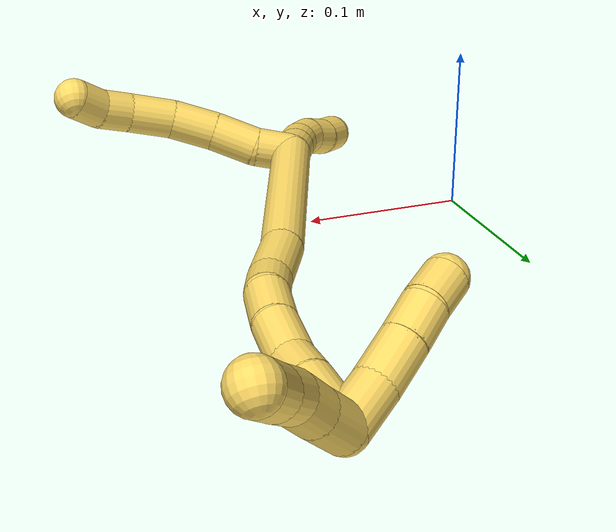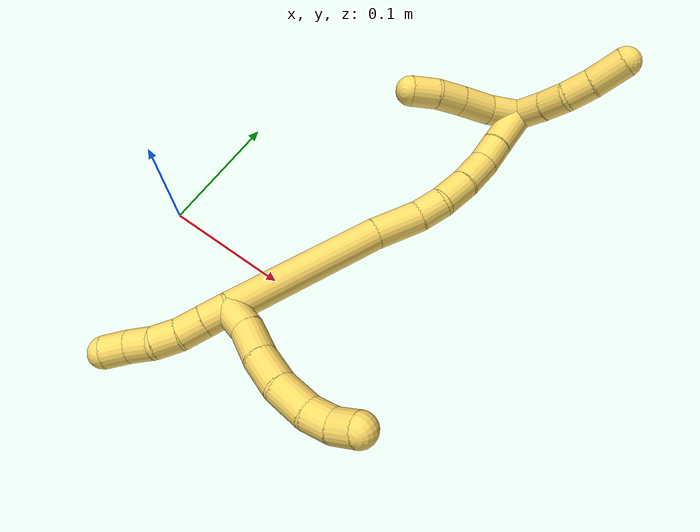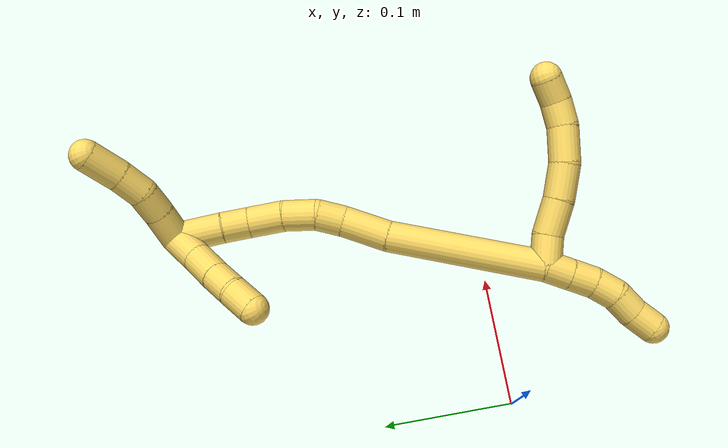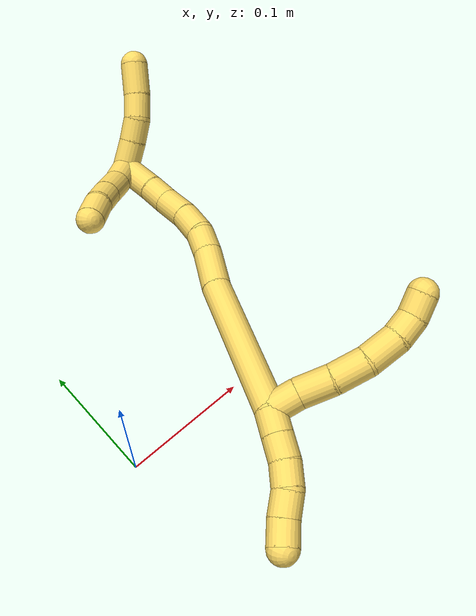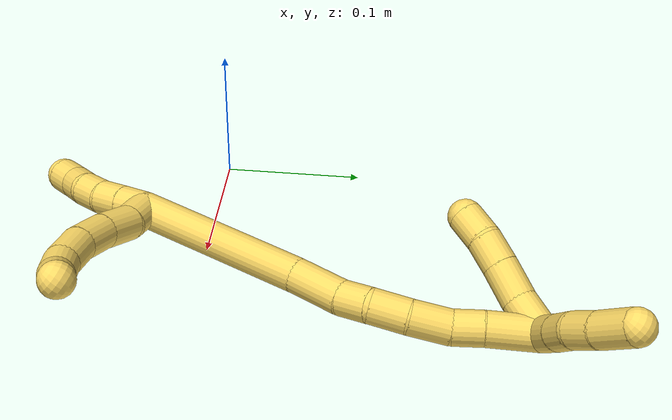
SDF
<sdf version="1.7">
 <world name="default">
  <model name="5">
   <static>0</static>
   <link name="5">
    <collision name="collision-cylinder-e_1_2_8">
     <pose>0.004878 0.010454 0.003561 -1.24252 0.415942 -0.299839</pose>
     <geometry><cylinder><radius>0.0125</radius><length>0.024147</length></cylinder></geometry>
     <surface>
      <friction><ode><mu>1.16</mu><mu2>1.16</mu2><slip1>0</slip1><slip2>0</slip2></ode></friction>
      <contact><ode><kp>1e+06</kp><kd>1</kd><max_vel>0</max_vel><min_depth>0.001</min_depth></ode></contact>
     </surface>
    </collision>
    <visual name="visual-cylinder-e_1_2_8">
     <pose>0.004878 0.010454 0.003561 -1.24252 0.415942 -0.299839</pose>
     <geometry><cylinder><radius>0.0125</radius><length>0.024147</length></cylinder></geometry>
     <material><ambient>1 0.858824 0.4 1</ambient></material>
    </visual>
    <collision name="collision-cylinder-e_2_8_9">
     <pose>0.015107 0.031897 0.014594 -0.97356 0.382792 -0.204392</pose>
     <geometry><cylinder><radius>0.0125</radius><length>0.02865</length></cylinder></geometry>
     <surface>
      <friction><ode><mu>1.16</mu><mu2>1.16</mu2><slip1>0</slip1><slip2>0</slip2></ode></friction>
      <contact><ode><kp>1e+06</kp><kd>1</kd><max_vel>0</max_vel><min_depth>0.001</min_depth></ode></contact>
     </surface>
    </collision>
    <visual name="visual-cylinder-e_2_8_9">
     <pose>0.015107 0.031897 0.014594 -0.97356 0.382792 -0.204392</pose>
     <geometry><cylinder><radius>0.0125</radius><length>0.02865</length></cylinder></geometry>
     <material><ambient>1 0.858824 0.4 1</ambient></material>
    </visual>
    <collision name="collision-cylinder-e_3_9_10">
     <pose>0.025554 0.054806 0.027838 -1.11993 0.367276 -0.231826</pose>
     <geometry><cylinder><radius>0.0125</radius><length>0.028382</length></cylinder></geometry>
     <surface>
      <friction><ode><mu>1.16</mu><mu2>1.16</mu2><slip1>0</slip1><slip2>0</slip2></ode></friction>
      <contact><ode><kp>1e+06</kp><kd>1</kd><max_vel>0</max_vel><min_depth>0.001</min_depth></ode></contact>
     </surface>
    </collision>
    <visual name="visual-cylinder-e_3_9_10">
     <pose>0.025554 0.054806 0.027838 -1.11993 0.367276 -0.231826</pose>
     <geometry><cylinder><radius>0.0125</radius><length>0.028382</length></cylinder></geometry>
     <material><ambient>1 0.858824 0.4 1</ambient></material>
    </visual>
    <collision name="collision-cylinder-e_4_10_11">
     <pose>0.035275 0.079966 0.036595 -1.34901 0.32853 -0.263548</pose>
     <geometry><cylinder><radius>0.0125</radius><length>0.028676</length></cylinder></geometry>
     <surface>
      <friction><ode><mu>1.16</mu><mu2>1.16</mu2><slip1>0</slip1><slip2>0</slip2></ode></friction>
      <contact><ode><kp>1e+06</kp><kd>1</kd><max_vel>0</max_vel><min_depth>0.001</min_depth></ode></contact>
     </surface>
    </collision>
    <visual name="visual-cylinder-e_4_10_11">
     <pose>0.035275 0.079966 0.036595 -1.34901 0.32853 -0.263548</pose>
     <geometry><cylinder><radius>0.0125</radius><length>0.028676</length></cylinder></geometry>
     <material><ambient>1 0.858824 0.4 1</ambient></material>
    </visual>
    <collision name="collision-cylinder-e_5_11_12">
     <pose>0.041483 0.103131 0.04015 -1.51348 0.157692 -0.148936</pose>
     <geometry><cylinder><radius>0.0125</radius><length>0.020136</length></cylinder></geometry>
     <surface>
      <friction><ode><mu>1.16</mu><mu2>1.16</mu2><slip1>0</slip1><slip2>0</slip2></ode></friction>
      <contact><ode><kp>1e+06</kp><kd>1</kd><max_vel>0</max_vel><min_depth>0.001</min_depth></ode></contact>
     </surface>
    </collision>
    <visual name="visual-cylinder-e_5_11_12">
     <pose>0.041483 0.103131 0.04015 -1.51348 0.157692 -0.148936</pose>
     <geometry><cylinder><radius>0.0125</radius><length>0.020136</length></cylinder></geometry>
     <material><ambient>1 0.858824 0.4 1</ambient></material>
    </visual>
    <collision name="collision-cylinder-e_6_12_6">
     <pose>0.041208 0.122863 0.041434 -1.49808 -0.186557 0.17353</pose>
     <geometry><cylinder><radius>0.0125</radius><length>0.020009</length></cylinder></geometry>
     <surface>
      <friction><ode><mu>1.16</mu><mu2>1.16</mu2><slip1>0</slip1><slip2>0</slip2></ode></friction>
      <contact><ode><kp>1e+06</kp><kd>1</kd><max_vel>0</max_vel><min_depth>0.001</min_depth></ode></contact>
     </surface>
    </collision>
    <visual name="visual-cylinder-e_6_12_6">
     <pose>0.041208 0.122863 0.041434 -1.49808 -0.186557 0.17353</pose>
     <geometry><cylinder><radius>0.0125</radius><length>0.020009</length></cylinder></geometry>
     <material><ambient>1 0.858824 0.4 1</ambient></material>
    </visual>
    <collision name="collision-cylinder-e_1_2_13">
     <pose>0.004085 -0.006805 0.006083 0.84139 0.420763 0.190501</pose>
     <geometry><cylinder><radius>0.0125</radius><length>0.02</length></cylinder></geometry>
     <surface>
      <friction><ode><mu>1.16</mu><mu2>1.16</mu2><slip1>0</slip1><slip2>0</slip2></ode></friction>
      <contact><ode><kp>1e+06</kp><kd>1</kd><max_vel>0</max_vel><min_depth>0.001</min_depth></ode></contact>
     </surface>
    </collision>
    <visual name="visual-cylinder-e_1_2_13">
     <pose>0.004085 -0.006805 0.006083 0.84139 0.420763 0.190501</pose>
     <geometry><cylinder><radius>0.0125</radius><length>0.02</length></cylinder></geometry>
     <material><ambient>1 0.858824 0.4 1</ambient></material>
    </visual>
    <collision name="collision-cylinder-e_2_13_14">
     <pose>0.012347 -0.020399 0.018205 0.843765 0.431061 0.195898</pose>
     <geometry><cylinder><radius>0.0125</radius><length>0.02</length></cylinder></geometry>
     <surface>
      <friction><ode><mu>1.16</mu><mu2>1.16</mu2><slip1>0</slip1><slip2>0</slip2></ode></friction>
      <contact><ode><kp>1e+06</kp><kd>1</kd><max_vel>0</max_vel><min_depth>0.001</min_depth></ode></contact>
     </surface>
    </collision>
    <visual name="visual-cylinder-e_2_13_14">
     <pose>0.012347 -0.020399 0.018205 0.843765 0.431061 0.195898</pose>
     <geometry><cylinder><radius>0.0125</radius><length>0.02</length></cylinder></geometry>
     <material><ambient>1 0.858824 0.4 1</ambient></material>
    </visual>
    <collision name="collision-cylinder-e_3_14_15">
     <pose>0.019444 -0.035135 0.029564 0.980876 0.29614 0.158954</pose>
     <geometry><cylinder><radius>0.0125</radius><length>0.02</length></cylinder></geometry>
     <surface>
      <friction><ode><mu>1.16</mu><mu2>1.16</mu2><slip1>0</slip1><slip2>0</slip2></ode></friction>
      <contact><ode><kp>1e+06</kp><kd>1</kd><max_vel>0</max_vel><min_depth>0.001</min_depth></ode></contact>
     </surface>
    </collision>
    <visual name="visual-cylinder-e_3_14_15">
     <pose>0.019444 -0.035135 0.029564 0.980876 0.29614 0.158954</pose>
     <geometry><cylinder><radius>0.0125</radius><length>0.02</length></cylinder></geometry>
     <material><ambient>1 0.858824 0.4 1</ambient></material>
    </visual>
    <collision name="collision-cylinder-e_4_15_16">
     <pose>0.024576 -0.052429 0.03767 1.28118 0.223169 0.166671</pose>
     <geometry><cylinder><radius>0.0125</radius><length>0.02</length></cylinder></geometry>
     <surface>
      <friction><ode><mu>1.16</mu><mu2>1.16</mu2><slip1>0</slip1><slip2>0</slip2></ode></friction>
      <contact><ode><kp>1e+06</kp><kd>1</kd><max_vel>0</max_vel><min_depth>0.001</min_depth></ode></contact>
     </surface>
    </collision>
    <visual name="visual-cylinder-e_4_15_16">
     <pose>0.024576 -0.052429 0.03767 1.28118 0.223169 0.166671</pose>
     <geometry><cylinder><radius>0.0125</radius><length>0.02</length></cylinder></geometry>
     <material><ambient>1 0.858824 0.4 1</ambient></material>
    </visual>
    <collision name="collision-cylinder-e_5_16_5">
     <pose>0.02906 -0.07042 0.044938 1.09241 0.229133 0.139674</pose>
     <geometry><cylinder><radius>0.0125</radius><length>0.02</length></cylinder></geometry>
     <surface>
      <friction><ode><mu>1.16</mu><mu2>1.16</mu2><slip1>0</slip1><slip2>0</slip2></ode></friction>
      <contact><ode><kp>1e+06</kp><kd>1</kd><max_vel>0</max_vel><min_depth>0.001</min_depth></ode></contact>
     </surface>
    </collision>
    <visual name="visual-cylinder-e_5_16_5">
     <pose>0.02906 -0.07042 0.044938 1.09241 0.229133 0.139674</pose>
     <geometry><cylinder><radius>0.0125</radius><length>0.02</length></cylinder></geometry>
     <material><ambient>1 0.858824 0.4 1</ambient></material>
    </visual>
    <collision name="collision-cylinder-e_1_2_17">
     <pose>-0.018715 0.033789 -0.049151 -2.53934 -0.304044 0.916537</pose>
     <geometry><cylinder><radius>0.0125</radius><length>0.125025</length></cylinder></geometry>
     <surface>
      <friction><ode><mu>1.16</mu><mu2>1.16</mu2><slip1>0</slip1><slip2>0</slip2></ode></friction>
      <contact><ode><kp>1e+06</kp><kd>1</kd><max_vel>0</max_vel><min_depth>0.001</min_depth></ode></contact>
     </surface>
    </collision>
    <visual name="visual-cylinder-e_1_2_17">
     <pose>-0.018715 0.033789 -0.049151 -2.53934 -0.304044 0.916537</pose>
     <geometry><cylinder><radius>0.0125</radius><length>0.125025</length></cylinder></geometry>
     <material><ambient>1 0.858824 0.4 1</ambient></material>
    </visual>
    <collision name="collision-cylinder-e_2_17_18">
     <pose>-0.042566 0.079985 -0.111731 -2.39576 -0.273858 0.677276</pose>
     <geometry><cylinder><radius>0.0125</radius><length>0.037982</length></cylinder></geometry>
     <surface>
      <friction><ode><mu>1.16</mu><mu2>1.16</mu2><slip1>0</slip1><slip2>0</slip2></ode></friction>
      <contact><ode><kp>1e+06</kp><kd>1</kd><max_vel>0</max_vel><min_depth>0.001</min_depth></ode></contact>
     </surface>
    </collision>
    <visual name="visual-cylinder-e_2_17_18">
     <pose>-0.042566 0.079985 -0.111731 -2.39576 -0.273858 0.677276</pose>
     <geometry><cylinder><radius>0.0125</radius><length>0.037982</length></cylinder></geometry>
     <material><ambient>1 0.858824 0.4 1</ambient></material>
    </visual>
    <collision name="collision-cylinder-e_3_18_19">
     <pose>-0.052405 0.099058 -0.132443 -2.4003 -0.444581 1.05361</pose>
     <geometry><cylinder><radius>0.0125</radius><length>0.021872</length></cylinder></geometry>
     <surface>
      <friction><ode><mu>1.16</mu><mu2>1.16</mu2><slip1>0</slip1><slip2>0</slip2></ode></friction>
      <contact><ode><kp>1e+06</kp><kd>1</kd><max_vel>0</max_vel><min_depth>0.001</min_depth></ode></contact>
     </surface>
    </collision>
    <visual name="visual-cylinder-e_3_18_19">
     <pose>-0.052405 0.099058 -0.132443 -2.4003 -0.444581 1.05361</pose>
     <geometry><cylinder><radius>0.0125</radius><length>0.021872</length></cylinder></geometry>
     <material><ambient>1 0.858824 0.4 1</ambient></material>
    </visual>
    <collision name="collision-cylinder-e_4_19_20">
     <pose>-0.062356 0.110427 -0.150891 -2.74302 -0.408743 1.5967</pose>
     <geometry><cylinder><radius>0.0125</radius><length>0.026405</length></cylinder></geometry>
     <surface>
      <friction><ode><mu>1.16</mu><mu2>1.16</mu2><slip1>0</slip1><slip2>0</slip2></ode></friction>
      <contact><ode><kp>1e+06</kp><kd>1</kd><max_vel>0</max_vel><min_depth>0.001</min_depth></ode></contact>
     </surface>
    </collision>
    <visual name="visual-cylinder-e_4_19_20">
     <pose>-0.062356 0.110427 -0.150891 -2.74302 -0.408743 1.5967</pose>
     <geometry><cylinder><radius>0.0125</radius><length>0.026405</length></cylinder></geometry>
     <material><ambient>1 0.858824 0.4 1</ambient></material>
    </visual>
    <collision name="collision-cylinder-e_5_20_21">
     <pose>-0.07352 0.118115 -0.174868 -2.91257 -0.42265 2.15735</pose>
     <geometry><cylinder><radius>0.0125</radius><length>0.02885</length></cylinder></geometry>
     <surface>
      <friction><ode><mu>1.16</mu><mu2>1.16</mu2><slip1>0</slip1><slip2>0</slip2></ode></friction>
      <contact><ode><kp>1e+06</kp><kd>1</kd><max_vel>0</max_vel><min_depth>0.001</min_depth></ode></contact>
     </surface>
    </collision>
    <visual name="visual-cylinder-e_5_20_21">
     <pose>-0.07352 0.118115 -0.174868 -2.91257 -0.42265 2.15735</pose>
     <geometry><cylinder><radius>0.0125</radius><length>0.02885</length></cylinder></geometry>
     <material><ambient>1 0.858824 0.4 1</ambient></material>
    </visual>
    <collision name="collision-cylinder-e_6_21_22">
     <pose>-0.086015 0.123559 -0.196074 -2.85683 -0.64484 2.33093</pose>
     <geometry><cylinder><radius>0.0125</radius><length>0.021888</length></cylinder></geometry>
     <surface>
      <friction><ode><mu>1.16</mu><mu2>1.16</mu2><slip1>0</slip1><slip2>0</slip2></ode></friction>
      <contact><ode><kp>1e+06</kp><kd>1</kd><max_vel>0</max_vel><min_depth>0.001</min_depth></ode></contact>
     </surface>
    </collision>
    <visual name="visual-cylinder-e_6_21_22">
     <pose>-0.086015 0.123559 -0.196074 -2.85683 -0.64484 2.33093</pose>
     <geometry><cylinder><radius>0.0125</radius><length>0.021888</length></cylinder></geometry>
     <material><ambient>1 0.858824 0.4 1</ambient></material>
    </visual>
    <collision name="collision-cylinder-e_7_22_1">
     <pose>-0.102956 0.129694 -0.219951 -2.90837 -0.577204 2.38998</pose>
     <geometry><cylinder><radius>0.0125</radius><length>0.037979</length></cylinder></geometry>
     <surface>
      <friction><ode><mu>1.16</mu><mu2>1.16</mu2><slip1>0</slip1><slip2>0</slip2></ode></friction>
      <contact><ode><kp>1e+06</kp><kd>1</kd><max_vel>0</max_vel><min_depth>0.001</min_depth></ode></contact>
     </surface>
    </collision>
    <visual name="visual-cylinder-e_7_22_1">
     <pose>-0.102956 0.129694 -0.219951 -2.90837 -0.577204 2.38998</pose>
     <geometry><cylinder><radius>0.0125</radius><length>0.037979</length></cylinder></geometry>
     <material><ambient>1 0.858824 0.4 1</ambient></material>
    </visual>
    <collision name="collision-cylinder-e_1_1_23">
     <pose>-0.116318 0.123162 -0.22648 0.850869 -0.217469 -0.098846</pose>
     <geometry><cylinder><radius>0.0125</radius><length>0.027812</length></cylinder></geometry>
     <surface>
      <friction><ode><mu>1.16</mu><mu2>1.16</mu2><slip1>0</slip1><slip2>0</slip2></ode></friction>
      <contact><ode><kp>1e+06</kp><kd>1</kd><max_vel>0</max_vel><min_depth>0.001</min_depth></ode></contact>
     </surface>
    </collision>
    <visual name="visual-cylinder-e_1_1_23">
     <pose>-0.116318 0.123162 -0.22648 0.850869 -0.217469 -0.098846</pose>
     <geometry><cylinder><radius>0.0125</radius><length>0.027812</length></cylinder></geometry>
     <material><ambient>1 0.858824 0.4 1</ambient></material>
    </visual>
    <collision name="collision-cylinder-e_2_23_24">
     <pose>-0.124026 0.104107 -0.207987 0.747675 -0.347166 -0.137356</pose>
     <geometry><cylinder><radius>0.0125</radius><length>0.027672</length></cylinder></geometry>
     <surface>
      <friction><ode><mu>1.16</mu><mu2>1.16</mu2><slip1>0</slip1><slip2>0</slip2></ode></friction>
      <contact><ode><kp>1e+06</kp><kd>1</kd><max_vel>0</max_vel><min_depth>0.001</min_depth></ode></contact>
     </surface>
    </collision>
    <visual name="visual-cylinder-e_2_23_24">
     <pose>-0.124026 0.104107 -0.207987 0.747675 -0.347166 -0.137356</pose>
     <geometry><cylinder><radius>0.0125</radius><length>0.027672</length></cylinder></geometry>
     <material><ambient>1 0.858824 0.4 1</ambient></material>
    </visual>
    <collision name="collision-cylinder-e_3_24_25">
     <pose>-0.13212 0.088237 -0.190571 0.728228 -0.310501 -0.119153</pose>
     <geometry><cylinder><radius>0.0125</radius><length>0.022165</length></cylinder></geometry>
     <surface>
      <friction><ode><mu>1.16</mu><mu2>1.16</mu2><slip1>0</slip1><slip2>0</slip2></ode></friction>
      <contact><ode><kp>1e+06</kp><kd>1</kd><max_vel>0</max_vel><min_depth>0.001</min_depth></ode></contact>
     </surface>
    </collision>
    <visual name="visual-cylinder-e_3_24_25">
     <pose>-0.13212 0.088237 -0.190571 0.728228 -0.310501 -0.119153</pose>
     <geometry><cylinder><radius>0.0125</radius><length>0.022165</length></cylinder></geometry>
     <material><ambient>1 0.858824 0.4 1</ambient></material>
    </visual>
    <collision name="collision-cylinder-e_4_25_4">
     <pose>-0.137203 0.072792 -0.175548 0.86706 -0.152481 -0.070691</pose>
     <geometry><cylinder><radius>0.0125</radius><length>0.022351</length></cylinder></geometry>
     <surface>
      <friction><ode><mu>1.16</mu><mu2>1.16</mu2><slip1>0</slip1><slip2>0</slip2></ode></friction>
      <contact><ode><kp>1e+06</kp><kd>1</kd><max_vel>0</max_vel><min_depth>0.001</min_depth></ode></contact>
     </surface>
    </collision>
    <visual name="visual-cylinder-e_4_25_4">
     <pose>-0.137203 0.072792 -0.175548 0.86706 -0.152481 -0.070691</pose>
     <geometry><cylinder><radius>0.0125</radius><length>0.022351</length></cylinder></geometry>
     <material><ambient>1 0.858824 0.4 1</ambient></material>
    </visual>
    <collision name="collision-cylinder-e_1_1_26">
     <pose>-0.118263 0.145491 -0.233476 -1.41072 -0.382934 0.327159</pose>
     <geometry><cylinder><radius>0.0125</radius><length>0.026471</length></cylinder></geometry>
     <surface>
      <friction><ode><mu>1.16</mu><mu2>1.16</mu2><slip1>0</slip1><slip2>0</slip2></ode></friction>
      <contact><ode><kp>1e+06</kp><kd>1</kd><max_vel>0</max_vel><min_depth>0.001</min_depth></ode></contact>
     </surface>
    </collision>
    <visual name="visual-cylinder-e_1_1_26">
     <pose>-0.118263 0.145491 -0.233476 -1.41072 -0.382934 0.327159</pose>
     <geometry><cylinder><radius>0.0125</radius><length>0.026471</length></cylinder></geometry>
     <material><ambient>1 0.858824 0.4 1</ambient></material>
    </visual>
    <collision name="collision-cylinder-e_2_26_27">
     <pose>-0.12779 0.167182 -0.230139 -1.42757 -0.442459 0.384784</pose>
     <geometry><cylinder><radius>0.0125</radius><length>0.021401</length></cylinder></geometry>
     <surface>
      <friction><ode><mu>1.16</mu><mu2>1.16</mu2><slip1>0</slip1><slip2>0</slip2></ode></friction>
      <contact><ode><kp>1e+06</kp><kd>1</kd><max_vel>0</max_vel><min_depth>0.001</min_depth></ode></contact>
     </surface>
    </collision>
    <visual name="visual-cylinder-e_2_26_27">
     <pose>-0.12779 0.167182 -0.230139 -1.42757 -0.442459 0.384784</pose>
     <geometry><cylinder><radius>0.0125</radius><length>0.021401</length></cylinder></geometry>
     <material><ambient>1 0.858824 0.4 1</ambient></material>
    </visual>
    <collision name="collision-cylinder-e_3_27_28">
     <pose>-0.138037 0.186315 -0.23038 -1.73875 -0.528654 0.620155</pose>
     <geometry><cylinder><radius>0.0125</radius><length>0.022463</length></cylinder></geometry>
     <surface>
      <friction><ode><mu>1.16</mu><mu2>1.16</mu2><slip1>0</slip1><slip2>0</slip2></ode></friction>
      <contact><ode><kp>1e+06</kp><kd>1</kd><max_vel>0</max_vel><min_depth>0.001</min_depth></ode></contact>
     </surface>
    </collision>
    <visual name="visual-cylinder-e_3_27_28">
     <pose>-0.138037 0.186315 -0.23038 -1.73875 -0.528654 0.620155</pose>
     <geometry><cylinder><radius>0.0125</radius><length>0.022463</length></cylinder></geometry>
     <material><ambient>1 0.858824 0.4 1</ambient></material>
    </visual>
    <collision name="collision-cylinder-e_4_28_3">
     <pose>-0.15229 0.207691 -0.234582 -1.78591 -0.617543 0.754436</pose>
     <geometry><cylinder><radius>0.0125</radius><length>0.029665</length></cylinder></geometry>
     <surface>
      <friction><ode><mu>1.16</mu><mu2>1.16</mu2><slip1>0</slip1><slip2>0</slip2></ode></friction>
      <contact><ode><kp>1e+06</kp><kd>1</kd><max_vel>0</max_vel><min_depth>0.001</min_depth></ode></contact>
     </surface>
    </collision>
    <visual name="visual-cylinder-e_4_28_3">
     <pose>-0.15229 0.207691 -0.234582 -1.78591 -0.617543 0.754436</pose>
     <geometry><cylinder><radius>0.0125</radius><length>0.029665</length></cylinder></geometry>
     <material><ambient>1 0.858824 0.4 1</ambient></material>
    </visual>
    <collision name="collision-sphere-3">
     <pose>-0.160878 0.219505 -0.237164 0 -0 0</pose>
     <geometry><sphere><radius>0.0125</radius></sphere></geometry>
     <surface>
      <friction><ode><mu>1.16</mu><mu2>1.16</mu2><slip1>0</slip1><slip2>0</slip2></ode></friction>
      <contact><ode><kp>1e+06</kp><kd>1</kd><max_vel>0</max_vel><min_depth>0.001</min_depth></ode></contact>
     </surface>
    </collision>
    <visual name="visual-sphere-3">
     <pose>-0.160878 0.219505 -0.237164 0 -0 0</pose>
     <geometry><sphere><radius>0.0125</radius></sphere></geometry>
     <material><ambient>1 0.858824 0.4 1</ambient></material>
    </visual>
    <collision name="collision-sphere-28">
     <pose>-0.143701 0.195877 -0.232001 0 -0 0</pose>
     <geometry><sphere><radius>0.0125</radius></sphere></geometry>
     <surface>
      <friction><ode><mu>1.16</mu><mu2>1.16</mu2><slip1>0</slip1><slip2>0</slip2></ode></friction>
      <contact><ode><kp>1e+06</kp><kd>1</kd><max_vel>0</max_vel><min_depth>0.001</min_depth></ode></contact>
     </surface>
    </collision>
    <visual name="visual-sphere-28">
     <pose>-0.143701 0.195877 -0.232001 0 -0 0</pose>
     <geometry><sphere><radius>0.0125</radius></sphere></geometry>
     <material><ambient>1 0.858824 0.4 1</ambient></material>
    </visual>
    <collision name="collision-sphere-27">
     <pose>-0.132372 0.176753 -0.228759 0 -0 0</pose>
     <geometry><sphere><radius>0.0125</radius></sphere></geometry>
     <surface>
      <friction><ode><mu>1.16</mu><mu2>1.16</mu2><slip1>0</slip1><slip2>0</slip2></ode></friction>
      <contact><ode><kp>1e+06</kp><kd>1</kd><max_vel>0</max_vel><min_depth>0.001</min_depth></ode></contact>
     </surface>
    </collision>
    <visual name="visual-sphere-27">
     <pose>-0.132372 0.176753 -0.228759 0 -0 0</pose>
     <geometry><sphere><radius>0.0125</radius></sphere></geometry>
     <material><ambient>1 0.858824 0.4 1</ambient></material>
    </visual>
    <collision name="collision-sphere-26">
     <pose>-0.123209 0.157611 -0.231519 0 -0 0</pose>
     <geometry><sphere><radius>0.0125</radius></sphere></geometry>
     <surface>
      <friction><ode><mu>1.16</mu><mu2>1.16</mu2><slip1>0</slip1><slip2>0</slip2></ode></friction>
      <contact><ode><kp>1e+06</kp><kd>1</kd><max_vel>0</max_vel><min_depth>0.001</min_depth></ode></contact>
     </surface>
    </collision>
    <visual name="visual-sphere-26">
     <pose>-0.123209 0.157611 -0.231519 0 -0 0</pose>
     <geometry><sphere><radius>0.0125</radius></sphere></geometry>
     <material><ambient>1 0.858824 0.4 1</ambient></material>
    </visual>
    <collision name="collision-sphere-4">
     <pose>-0.138901 0.064371 -0.1684 0 -0 0</pose>
     <geometry><sphere><radius>0.0125</radius></sphere></geometry>
     <surface>
      <friction><ode><mu>1.16</mu><mu2>1.16</mu2><slip1>0</slip1><slip2>0</slip2></ode></friction>
      <contact><ode><kp>1e+06</kp><kd>1</kd><max_vel>0</max_vel><min_depth>0.001</min_depth></ode></contact>
     </surface>
    </collision>
    <visual name="visual-sphere-4">
     <pose>-0.138901 0.064371 -0.1684 0 -0 0</pose>
     <geometry><sphere><radius>0.0125</radius></sphere></geometry>
     <material><ambient>1 0.858824 0.4 1</ambient></material>
    </visual>
    <collision name="collision-sphere-25">
     <pose>-0.135506 0.081214 -0.182695 0 -0 0</pose>
     <geometry><sphere><radius>0.0125</radius></sphere></geometry>
     <surface>
      <friction><ode><mu>1.16</mu><mu2>1.16</mu2><slip1>0</slip1><slip2>0</slip2></ode></friction>
      <contact><ode><kp>1e+06</kp><kd>1</kd><max_vel>0</max_vel><min_depth>0.001</min_depth></ode></contact>
     </surface>
    </collision>
    <visual name="visual-sphere-25">
     <pose>-0.135506 0.081214 -0.182695 0 -0 0</pose>
     <geometry><sphere><radius>0.0125</radius></sphere></geometry>
     <material><ambient>1 0.858824 0.4 1</ambient></material>
    </visual>
    <collision name="collision-sphere-24">
     <pose>-0.128733 0.09526 -0.198447 0 -0 0</pose>
     <geometry><sphere><radius>0.0125</radius></sphere></geometry>
     <surface>
      <friction><ode><mu>1.16</mu><mu2>1.16</mu2><slip1>0</slip1><slip2>0</slip2></ode></friction>
      <contact><ode><kp>1e+06</kp><kd>1</kd><max_vel>0</max_vel><min_depth>0.001</min_depth></ode></contact>
     </surface>
    </collision>
    <visual name="visual-sphere-24">
     <pose>-0.128733 0.09526 -0.198447 0 -0 0</pose>
     <geometry><sphere><radius>0.0125</radius></sphere></geometry>
     <material><ambient>1 0.858824 0.4 1</ambient></material>
    </visual>
    <collision name="collision-sphere-23">
     <pose>-0.119318 0.112953 -0.217528 0 -0 0</pose>
     <geometry><sphere><radius>0.0125</radius></sphere></geometry>
     <surface>
      <friction><ode><mu>1.16</mu><mu2>1.16</mu2><slip1>0</slip1><slip2>0</slip2></ode></friction>
      <contact><ode><kp>1e+06</kp><kd>1</kd><max_vel>0</max_vel><min_depth>0.001</min_depth></ode></contact>
     </surface>
    </collision>
    <visual name="visual-sphere-23">
     <pose>-0.119318 0.112953 -0.217528 0 -0 0</pose>
     <geometry><sphere><radius>0.0125</radius></sphere></geometry>
     <material><ambient>1 0.858824 0.4 1</ambient></material>
    </visual>
    <collision name="collision-sphere-1">
     <pose>-0.113318 0.133371 -0.235433 0 -0 0</pose>
     <geometry><sphere><radius>0.0125</radius></sphere></geometry>
     <surface>
      <friction><ode><mu>1.16</mu><mu2>1.16</mu2><slip1>0</slip1><slip2>0</slip2></ode></friction>
      <contact><ode><kp>1e+06</kp><kd>1</kd><max_vel>0</max_vel><min_depth>0.001</min_depth></ode></contact>
     </surface>
    </collision>
    <visual name="visual-sphere-1">
     <pose>-0.113318 0.133371 -0.235433 0 -0 0</pose>
     <geometry><sphere><radius>0.0125</radius></sphere></geometry>
     <material><ambient>1 0.858824 0.4 1</ambient></material>
    </visual>
    <collision name="collision-sphere-22">
     <pose>-0.092593 0.126016 -0.204469 0 -0 0</pose>
     <geometry><sphere><radius>0.0125</radius></sphere></geometry>
     <surface>
      <friction><ode><mu>1.16</mu><mu2>1.16</mu2><slip1>0</slip1><slip2>0</slip2></ode></friction>
      <contact><ode><kp>1e+06</kp><kd>1</kd><max_vel>0</max_vel><min_depth>0.001</min_depth></ode></contact>
     </surface>
    </collision>
    <visual name="visual-sphere-22">
     <pose>-0.092593 0.126016 -0.204469 0 -0 0</pose>
     <geometry><sphere><radius>0.0125</radius></sphere></geometry>
     <material><ambient>1 0.858824 0.4 1</ambient></material>
    </visual>
    <collision name="collision-sphere-21">
     <pose>-0.079437 0.121102 -0.18768 0 -0 0</pose>
     <geometry><sphere><radius>0.0125</radius></sphere></geometry>
     <surface>
      <friction><ode><mu>1.16</mu><mu2>1.16</mu2><slip1>0</slip1><slip2>0</slip2></ode></friction>
      <contact><ode><kp>1e+06</kp><kd>1</kd><max_vel>0</max_vel><min_depth>0.001</min_depth></ode></contact>
     </surface>
    </collision>
    <visual name="visual-sphere-21">
     <pose>-0.079437 0.121102 -0.18768 0 -0 0</pose>
     <geometry><sphere><radius>0.0125</radius></sphere></geometry>
     <material><ambient>1 0.858824 0.4 1</ambient></material>
    </visual>
    <collision name="collision-sphere-12">
     <pose>0.043064 0.113058 0.040719 0 -0 0</pose>
     <geometry><sphere><radius>0.0125</radius></sphere></geometry>
     <surface>
      <friction><ode><mu>1.16</mu><mu2>1.16</mu2><slip1>0</slip1><slip2>0</slip2></ode></friction>
      <contact><ode><kp>1e+06</kp><kd>1</kd><max_vel>0</max_vel><min_depth>0.001</min_depth></ode></contact>
     </surface>
    </collision>
    <visual name="visual-sphere-12">
     <pose>0.043064 0.113058 0.040719 0 -0 0</pose>
     <geometry><sphere><radius>0.0125</radius></sphere></geometry>
     <material><ambient>1 0.858824 0.4 1</ambient></material>
    </visual>
    <collision name="collision-sphere-11">
     <pose>0.039901 0.093204 0.03958 0 -0 0</pose>
     <geometry><sphere><radius>0.0125</radius></sphere></geometry>
     <surface>
      <friction><ode><mu>1.16</mu><mu2>1.16</mu2><slip1>0</slip1><slip2>0</slip2></ode></friction>
      <contact><ode><kp>1e+06</kp><kd>1</kd><max_vel>0</max_vel><min_depth>0.001</min_depth></ode></contact>
     </surface>
    </collision>
    <visual name="visual-sphere-11">
     <pose>0.039901 0.093204 0.03958 0 -0 0</pose>
     <geometry><sphere><radius>0.0125</radius></sphere></geometry>
     <material><ambient>1 0.858824 0.4 1</ambient></material>
    </visual>
    <collision name="collision-sphere-10">
     <pose>0.030649 0.066727 0.03361 0 -0 0</pose>
     <geometry><sphere><radius>0.0125</radius></sphere></geometry>
     <surface>
      <friction><ode><mu>1.16</mu><mu2>1.16</mu2><slip1>0</slip1><slip2>0</slip2></ode></friction>
      <contact><ode><kp>1e+06</kp><kd>1</kd><max_vel>0</max_vel><min_depth>0.001</min_depth></ode></contact>
     </surface>
    </collision>
    <visual name="visual-sphere-10">
     <pose>0.030649 0.066727 0.03361 0 -0 0</pose>
     <geometry><sphere><radius>0.0125</radius></sphere></geometry>
     <material><ambient>1 0.858824 0.4 1</ambient></material>
    </visual>
    <collision name="collision-sphere-9">
     <pose>0.020458 0.042885 0.022067 0 -0 0</pose>
     <geometry><sphere><radius>0.0125</radius></sphere></geometry>
     <surface>
      <friction><ode><mu>1.16</mu><mu2>1.16</mu2><slip1>0</slip1><slip2>0</slip2></ode></friction>
      <contact><ode><kp>1e+06</kp><kd>1</kd><max_vel>0</max_vel><min_depth>0.001</min_depth></ode></contact>
     </surface>
    </collision>
    <visual name="visual-sphere-9">
     <pose>0.020458 0.042885 0.022067 0 -0 0</pose>
     <geometry><sphere><radius>0.0125</radius></sphere></geometry>
     <material><ambient>1 0.858824 0.4 1</ambient></material>
    </visual>
    <collision name="collision-sphere-2">
     <geometry><sphere><radius>0.0125</radius></sphere></geometry>
     <surface>
      <friction><ode><mu>1.16</mu><mu2>1.16</mu2><slip1>0</slip1><slip2>0</slip2></ode></friction>
      <contact><ode><kp>1e+06</kp><kd>1</kd><max_vel>0</max_vel><min_depth>0.001</min_depth></ode></contact>
     </surface>
    </collision>
    <visual name="visual-sphere-2">
     <geometry><sphere><radius>0.0125</radius></sphere></geometry>
     <material><ambient>1 0.858824 0.4 1</ambient></material>
    </visual>
    <collision name="collision-sphere-19">
     <pose>-0.057109 0.105725 -0.139725 0 -0 0</pose>
     <geometry><sphere><radius>0.0125</radius></sphere></geometry>
     <surface>
      <friction><ode><mu>1.16</mu><mu2>1.16</mu2><slip1>0</slip1><slip2>0</slip2></ode></friction>
      <contact><ode><kp>1e+06</kp><kd>1</kd><max_vel>0</max_vel><min_depth>0.001</min_depth></ode></contact>
     </surface>
    </collision>
    <visual name="visual-sphere-19">
     <pose>-0.057109 0.105725 -0.139725 0 -0 0</pose>
     <geometry><sphere><radius>0.0125</radius></sphere></geometry>
     <material><ambient>1 0.858824 0.4 1</ambient></material>
    </visual>
    <collision name="collision-sphere-8">
     <pose>0.009757 0.020909 0.007121 0 -0 0</pose>
     <geometry><sphere><radius>0.0125</radius></sphere></geometry>
     <surface>
      <friction><ode><mu>1.16</mu><mu2>1.16</mu2><slip1>0</slip1><slip2>0</slip2></ode></friction>
      <contact><ode><kp>1e+06</kp><kd>1</kd><max_vel>0</max_vel><min_depth>0.001</min_depth></ode></contact>
     </surface>
    </collision>
    <visual name="visual-sphere-8">
     <pose>0.009757 0.020909 0.007121 0 -0 0</pose>
     <geometry><sphere><radius>0.0125</radius></sphere></geometry>
     <material><ambient>1 0.858824 0.4 1</ambient></material>
    </visual>
    <collision name="collision-sphere-6">
     <pose>0.039352 0.132667 0.042148 0 -0 0</pose>
     <geometry><sphere><radius>0.0125</radius></sphere></geometry>
     <surface>
      <friction><ode><mu>1.16</mu><mu2>1.16</mu2><slip1>0</slip1><slip2>0</slip2></ode></friction>
      <contact><ode><kp>1e+06</kp><kd>1</kd><max_vel>0</max_vel><min_depth>0.001</min_depth></ode></contact>
     </surface>
    </collision>
    <visual name="visual-sphere-6">
     <pose>0.039352 0.132667 0.042148 0 -0 0</pose>
     <geometry><sphere><radius>0.0125</radius></sphere></geometry>
     <material><ambient>1 0.858824 0.4 1</ambient></material>
    </visual>
    <collision name="collision-sphere-13">
     <pose>0.008169 -0.013611 0.012166 0 -0 0</pose>
     <geometry><sphere><radius>0.0125</radius></sphere></geometry>
     <surface>
      <friction><ode><mu>1.16</mu><mu2>1.16</mu2><slip1>0</slip1><slip2>0</slip2></ode></friction>
      <contact><ode><kp>1e+06</kp><kd>1</kd><max_vel>0</max_vel><min_depth>0.001</min_depth></ode></contact>
     </surface>
    </collision>
    <visual name="visual-sphere-13">
     <pose>0.008169 -0.013611 0.012166 0 -0 0</pose>
     <geometry><sphere><radius>0.0125</radius></sphere></geometry>
     <material><ambient>1 0.858824 0.4 1</ambient></material>
    </visual>
    <collision name="collision-sphere-14">
     <pose>0.016526 -0.027187 0.024243 0 -0 0</pose>
     <geometry><sphere><radius>0.0125</radius></sphere></geometry>
     <surface>
      <friction><ode><mu>1.16</mu><mu2>1.16</mu2><slip1>0</slip1><slip2>0</slip2></ode></friction>
      <contact><ode><kp>1e+06</kp><kd>1</kd><max_vel>0</max_vel><min_depth>0.001</min_depth></ode></contact>
     </surface>
    </collision>
    <visual name="visual-sphere-14">
     <pose>0.016526 -0.027187 0.024243 0 -0 0</pose>
     <geometry><sphere><radius>0.0125</radius></sphere></geometry>
     <material><ambient>1 0.858824 0.4 1</ambient></material>
    </visual>
    <collision name="collision-sphere-15">
     <pose>0.022362 -0.043083 0.034885 0 -0 0</pose>
     <geometry><sphere><radius>0.0125</radius></sphere></geometry>
     <surface>
      <friction><ode><mu>1.16</mu><mu2>1.16</mu2><slip1>0</slip1><slip2>0</slip2></ode></friction>
      <contact><ode><kp>1e+06</kp><kd>1</kd><max_vel>0</max_vel><min_depth>0.001</min_depth></ode></contact>
     </surface>
    </collision>
    <visual name="visual-sphere-15">
     <pose>0.022362 -0.043083 0.034885 0 -0 0</pose>
     <geometry><sphere><radius>0.0125</radius></sphere></geometry>
     <material><ambient>1 0.858824 0.4 1</ambient></material>
    </visual>
    <collision name="collision-sphere-16">
     <pose>0.026789 -0.061775 0.040455 0 -0 0</pose>
     <geometry><sphere><radius>0.0125</radius></sphere></geometry>
     <surface>
      <friction><ode><mu>1.16</mu><mu2>1.16</mu2><slip1>0</slip1><slip2>0</slip2></ode></friction>
      <contact><ode><kp>1e+06</kp><kd>1</kd><max_vel>0</max_vel><min_depth>0.001</min_depth></ode></contact>
     </surface>
    </collision>
    <visual name="visual-sphere-16">
     <pose>0.026789 -0.061775 0.040455 0 -0 0</pose>
     <geometry><sphere><radius>0.0125</radius></sphere></geometry>
     <material><ambient>1 0.858824 0.4 1</ambient></material>
    </visual>
    <collision name="collision-sphere-5">
     <pose>0.031332 -0.079066 0.049421 0 -0 0</pose>
     <geometry><sphere><radius>0.0125</radius></sphere></geometry>
     <surface>
      <friction><ode><mu>1.16</mu><mu2>1.16</mu2><slip1>0</slip1><slip2>0</slip2></ode></friction>
      <contact><ode><kp>1e+06</kp><kd>1</kd><max_vel>0</max_vel><min_depth>0.001</min_depth></ode></contact>
     </surface>
    </collision>
    <visual name="visual-sphere-5">
     <pose>0.031332 -0.079066 0.049421 0 -0 0</pose>
     <geometry><sphere><radius>0.0125</radius></sphere></geometry>
     <material><ambient>1 0.858824 0.4 1</ambient></material>
    </visual>
    <collision name="collision-sphere-17">
     <pose>-0.03743 0.067578 -0.098302 0 -0 0</pose>
     <geometry><sphere><radius>0.0125</radius></sphere></geometry>
     <surface>
      <friction><ode><mu>1.16</mu><mu2>1.16</mu2><slip1>0</slip1><slip2>0</slip2></ode></friction>
      <contact><ode><kp>1e+06</kp><kd>1</kd><max_vel>0</max_vel><min_depth>0.001</min_depth></ode></contact>
     </surface>
    </collision>
    <visual name="visual-sphere-17">
     <pose>-0.03743 0.067578 -0.098302 0 -0 0</pose>
     <geometry><sphere><radius>0.0125</radius></sphere></geometry>
     <material><ambient>1 0.858824 0.4 1</ambient></material>
    </visual>
    <collision name="collision-sphere-18">
     <pose>-0.047702 0.092392 -0.125161 0 -0 0</pose>
     <geometry><sphere><radius>0.0125</radius></sphere></geometry>
     <surface>
      <friction><ode><mu>1.16</mu><mu2>1.16</mu2><slip1>0</slip1><slip2>0</slip2></ode></friction>
      <contact><ode><kp>1e+06</kp><kd>1</kd><max_vel>0</max_vel><min_depth>0.001</min_depth></ode></contact>
     </surface>
    </collision>
    <visual name="visual-sphere-18">
     <pose>-0.047702 0.092392 -0.125161 0 -0 0</pose>
     <geometry><sphere><radius>0.0125</radius></sphere></geometry>
     <material><ambient>1 0.858824 0.4 1</ambient></material>
    </visual>
    <collision name="collision-sphere-20">
     <pose>-0.067604 0.115128 -0.162056 0 -0 0</pose>
     <geometry><sphere><radius>0.0125</radius></sphere></geometry>
     <surface>
      <friction><ode><mu>1.16</mu><mu2>1.16</mu2><slip1>0</slip1><slip2>0</slip2></ode></friction>
      <contact><ode><kp>1e+06</kp><kd>1</kd><max_vel>0</max_vel><min_depth>0.001</min_depth></ode></contact>
     </surface>
    </collision>
    <visual name="visual-sphere-20">
     <pose>-0.067604 0.115128 -0.162056 0 -0 0</pose>
     <geometry><sphere><radius>0.0125</radius></sphere></geometry>
     <material><ambient>1 0.858824 0.4 1</ambient></material>
    </visual>
    <inertial>
     <pose>-0.046762 0.075857 -0.095588 0 -0 0</pose>
     <mass>0.75</mass>
     <inertia>
      <ixx>0.000266</ixx>
      <ixy>0</ixy>
      <ixz>0</ixz>
      <iyy>0.000121</iyy>
      <iyz>0</iyz>
      <izz>-5.3e-05</izz>
     </inertia>
    </inertial>
   </link>
   <pose>0.09701 -0.04407 0.030778 0.518253 0.776906 -0.926063</pose>
  </model>
 </world>
</sdf>
